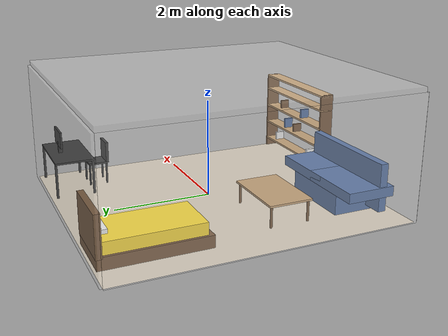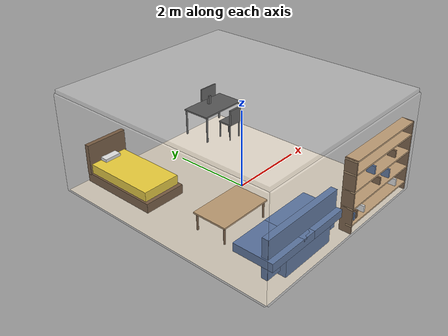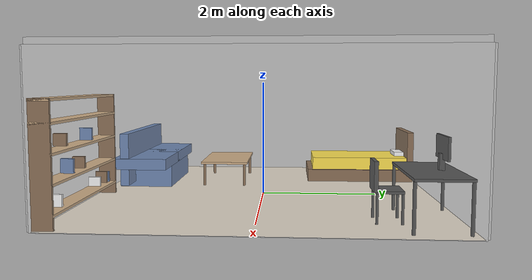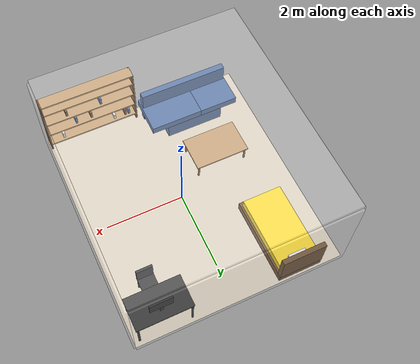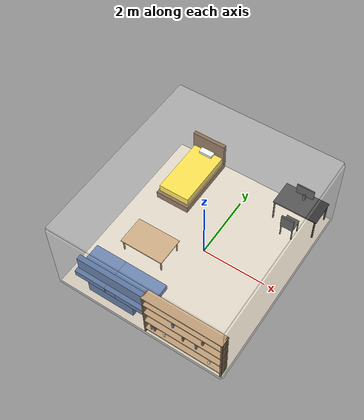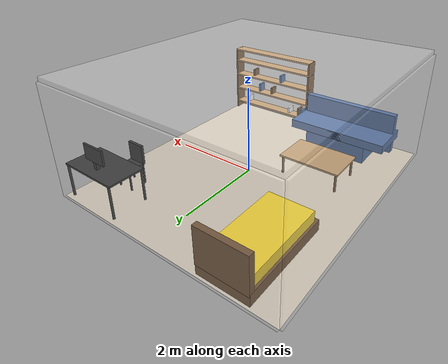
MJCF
<?xml version="1.0"?>
<mujoco model="Zixuan_room">

  <asset>
    <material name="room_floor_mat"    rgba="0.85 0.80 0.72 1"/>
    <material name="room_wall_mat"     rgba="1.00 1.00 1.00 0.25"/>
    <material name="room_black_mat"    rgba="0.12 0.12 0.12 1"/>
    <material name="room_yellow_mat"   rgba="1.00 0.85 0.10 1"/>
    <material name="room_white_mat"    rgba="0.95 0.95 0.95 1"/>
    <material name="room_fabric_blue"  rgba="0.25 0.38 0.60 1"/>
    <material name="room_wood_dark"    rgba="0.40 0.26 0.13 1"/>
    <material name="room_wood_light"   rgba="0.75 0.58 0.38 1"/>
  </asset>

  <worldbody>

    <!-- ===== Room structure (static, no body wrapper) ===== -->
    <!-- Floor: 5.3 m x 6 m (extended 0.3m in -x direction) -->
    <geom name="room_floor"       type="plane" size="2.65 3.0 0.1"   pos="-0.15 0 0"     material="room_floor_mat"/>
    <!-- Ceiling -->
    <geom name="room_ceiling"     type="box"   size="2.65 3.0 0.05"  pos="-0.15 0 2.55"  material="room_wall_mat"/>
    <!-- Walls (0.1 m thick, 2.5 m tall) -->
    <geom name="room_wall_back"   type="box"   size="2.65 0.05 1.25" pos="-0.15  3.0  1.25"  material="room_wall_mat"/>
    <geom name="room_wall_front"  type="box"   size="2.65 0.05 1.25" pos="-0.15 -3.0  1.25"  material="room_wall_mat"/>
    <geom name="room_wall_left"   type="box"   size="0.05 3.0 1.25"  pos="-2.8 0   1.25" material="room_wall_mat"/>
    <geom name="room_wall_right"  type="box"   size="0.05 3.0 1.25"  pos=" 2.5 0   1.25" material="room_wall_mat"/>

    <!-- ===== Bed (back-left corner) — 50 kg ===== -->
    <body name="bed">
      <inertial mass="50" pos="-1.7 2.0 0.35" diaginertia="19.9 6.5 23.4"/>
      <geom name="room_bed_frame"     type="box" size="0.55 1.05 0.12" pos="-1.7 1.9 0.12" material="room_wood_dark"/>
      <geom name="room_bed_mattress"  type="box" size="0.50 0.95 0.12" pos="-1.7 1.9 0.36" material="room_yellow_mat"/>
      <geom name="room_bed_pillow"    type="box" size="0.22 0.15 0.06" pos="-1.7 2.8 0.50" material="room_white_mat"/>
      <geom name="room_bed_headboard" type="box" size="0.55 0.06 0.40" pos="-1.7 2.9 0.60" material="room_wood_dark"/>
    </body>

    <!-- ===== Desk (back-right corner) — 20 kg ===== -->
    <body name="desk">
      <inertial mass="20" pos="1.7 2.5 0.45" diaginertia="2.0 4.2 4.3"/>
      <geom name="room_desk_top"       type="box"      size="0.70 0.40 0.02" pos="1.7 2.5 0.74"  material="room_black_mat"/>
      <geom name="room_desk_leg_fl"    type="cylinder" size="0.025 0.36"     pos="1.05 2.12 0.36" material="room_black_mat"/>
      <geom name="room_desk_leg_fr"    type="cylinder" size="0.025 0.36"     pos="2.35 2.12 0.36" material="room_black_mat"/>
      <geom name="room_desk_leg_bl"    type="cylinder" size="0.025 0.36"     pos="1.05 2.88 0.36" material="room_black_mat"/>
      <geom name="room_desk_leg_br"    type="cylinder" size="0.025 0.36"     pos="2.35 2.88 0.36" material="room_black_mat"/>
      <geom name="room_monitor_stand"  type="box"      size="0.04 0.04 0.12" pos="1.7 2.65 0.88"  material="room_black_mat"/>
      <geom name="room_monitor_screen" type="box"      size="0.28 0.02 0.17" pos="1.7 2.67 1.09"  material="room_black_mat"/>
    </body>

    <!-- ===== Chair (in front of desk) — 5 kg ===== -->
    <body name="chair">
      <inertial mass="5" pos="1.7 1.85 0.35" diaginertia="0.27 0.27 0.13"/>
      <geom name="room_chair_seat"   type="box"      size="0.20 0.20 0.02" pos="1.7 1.9 0.46"   material="room_black_mat"/>
      <geom name="room_chair_back"   type="box"      size="0.20 0.03 0.22" pos="1.7 1.70 0.68"  material="room_black_mat"/>
      <geom name="room_chair_leg_fl" type="cylinder" size="0.02 0.22"      pos="1.52 1.72 0.22" material="room_black_mat"/>
      <geom name="room_chair_leg_fr" type="cylinder" size="0.02 0.22"      pos="1.88 1.72 0.22" material="room_black_mat"/>
      <geom name="room_chair_leg_bl" type="cylinder" size="0.02 0.22"      pos="1.52 2.08 0.22" material="room_black_mat"/>
      <geom name="room_chair_leg_br" type="cylinder" size="0.02 0.22"      pos="1.88 2.08 0.22" material="room_black_mat"/>
    </body>

    <!-- ===== Bookshelf (right wall) — 40 kg ===== -->
    <body name="bookshelf">
      <inertial mass="40" pos="1.27 -2.85 0.90" diaginertia="11.1 29.4 18.9"/>
      <geom name="room_shelf_side_l"  type="box" size="0.02 0.15 0.90" pos=" 0.09 -2.85 0.90" material="room_wood_dark"/>
      <geom name="room_shelf_side_r"  type="box" size="0.02 0.15 0.90" pos=" 2.45 -2.85 0.90" material="room_wood_dark"/>
      <geom name="room_shelf_board_0" type="box" size="1.20 0.15 0.02" pos=" 1.27 -2.85 0.20"  material="room_wood_light"/>
      <geom name="room_shelf_board_1" type="box" size="1.20 0.15 0.02" pos=" 1.27 -2.85 0.62"  material="room_wood_light"/>
      <geom name="room_shelf_board_2" type="box" size="1.20 0.15 0.02" pos=" 1.27 -2.85 1.04"  material="room_wood_light"/>
      <geom name="room_shelf_board_3" type="box" size="1.20 0.15 0.02" pos=" 1.27 -2.85 1.46"  material="room_wood_light"/>
      <geom name="room_shelf_top"     type="box" size="1.20 0.15 0.02" pos=" 1.27 -2.85 1.78"  material="room_wood_light"/>
      <geom name="room_book_0" type="box" size="0.025 0.10 0.09" pos=" 0.27 -2.85 0.33" material="room_fabric_blue"/>
      <geom name="room_book_1" type="box" size="0.025 0.10 0.10" pos=" 0.37 -2.85 0.34" material="room_wood_dark"/>
      <geom name="room_book_2" type="box" size="0.025 0.10 0.08" pos=" 0.67 -2.85 0.32" material="room_white_mat"/>
      <geom name="room_book_3" type="box" size="0.025 0.10 0.09" pos=" 1.27 -2.85 0.75" material="room_wood_dark"/>
      <geom name="room_book_4" type="box" size="0.025 0.10 0.11" pos=" 1.67 -2.85 0.76" material="room_fabric_blue"/>
      <geom name="room_book_5" type="box" size="0.025 0.10 0.09" pos=" 2.07 -2.85 0.33" material="room_white_mat"/>
      <geom name="room_book_6" type="box" size="0.025 0.10 0.10" pos=" 0.97 -2.85 1.17" material="room_fabric_blue"/>
      <geom name="room_book_7" type="box" size="0.025 0.10 0.09" pos=" 1.87 -2.85 1.18" material="room_wood_dark"/>
    </body>

    <!-- ===== Coffee table (center of room) — 10 kg ===== -->
    <body name="coffee_table">
      <inertial mass="10" pos="0 0 0.30" diaginertia="0.85 1.81 2.31"/>
      <geom name="room_table_top"    type="box"      size="0.70 0.45 0.02" pos="-1.3 -0.8 0.44"        material="room_wood_light"/>
      <geom name="room_table_leg_fl" type="cylinder" size="0.025 0.21"     pos="-1.94 -1.19 0.21" material="room_wood_dark"/>
      <geom name="room_table_leg_fr" type="cylinder" size="0.025 0.21"     pos="-0.66 -1.19 0.21" material="room_wood_dark"/>
      <geom name="room_table_leg_bl" type="cylinder" size="0.025 0.21"     pos="-1.94  -0.41 0.21" material="room_wood_dark"/>
      <geom name="room_table_leg_br" type="cylinder" size="0.025 0.21"     pos="-0.66  -0.41 0.21" material="room_wood_dark"/>
    </body>

    <!-- ===== Sofa (front-left area) — 60 kg ===== -->
    <body name="sofa">
      <inertial mass="60" pos="-1.2 -2.40 0.40" diaginertia="7.5 28.9 31.5"/>
      <geom name="room_sofa_base"  type="box" size="0.75 0.50 0.20" pos="-1.2 -2.3 0.20"  material="room_fabric_blue"/>
      <geom name="room_sofa_back"  type="box" size="1.15 0.08 0.48" pos="-1.2 -2.58 0.58" material="room_fabric_blue"/>
      <geom name="room_sofa_arm_l" type="box" size="0.68 0.50 0.10" pos="-1.7 -2.3 0.50"  material="room_fabric_blue"/>
      <geom name="room_sofa_arm_r" type="box" size="0.68 0.50 0.10" pos="-0.7 -2.3 0.50"  material="room_fabric_blue"/>
    </body>

    <!-- ===== Lights ===== -->
    <light name="room_ceiling_main"  pos=" 0.0  0.0 2.4" dir="0 0 -1" diffuse="1.8 1.8 1.7"   specular="0.4 0.4 0.4" castshadow="true"/>
    <light name="room_ceiling_left"  pos="-1.5  1.0 2.4" dir="0 0 -1" diffuse="0.8 0.8 0.75"  specular="0.1 0.1 0.1" castshadow="false"/>
    <light name="room_ceiling_right" pos=" 1.5 -1.0 2.4" dir="0 0 -1" diffuse="0.8 0.8 0.75"  specular="0.1 0.1 0.1" castshadow="false"/>

  </worldbody>

</mujoco>
